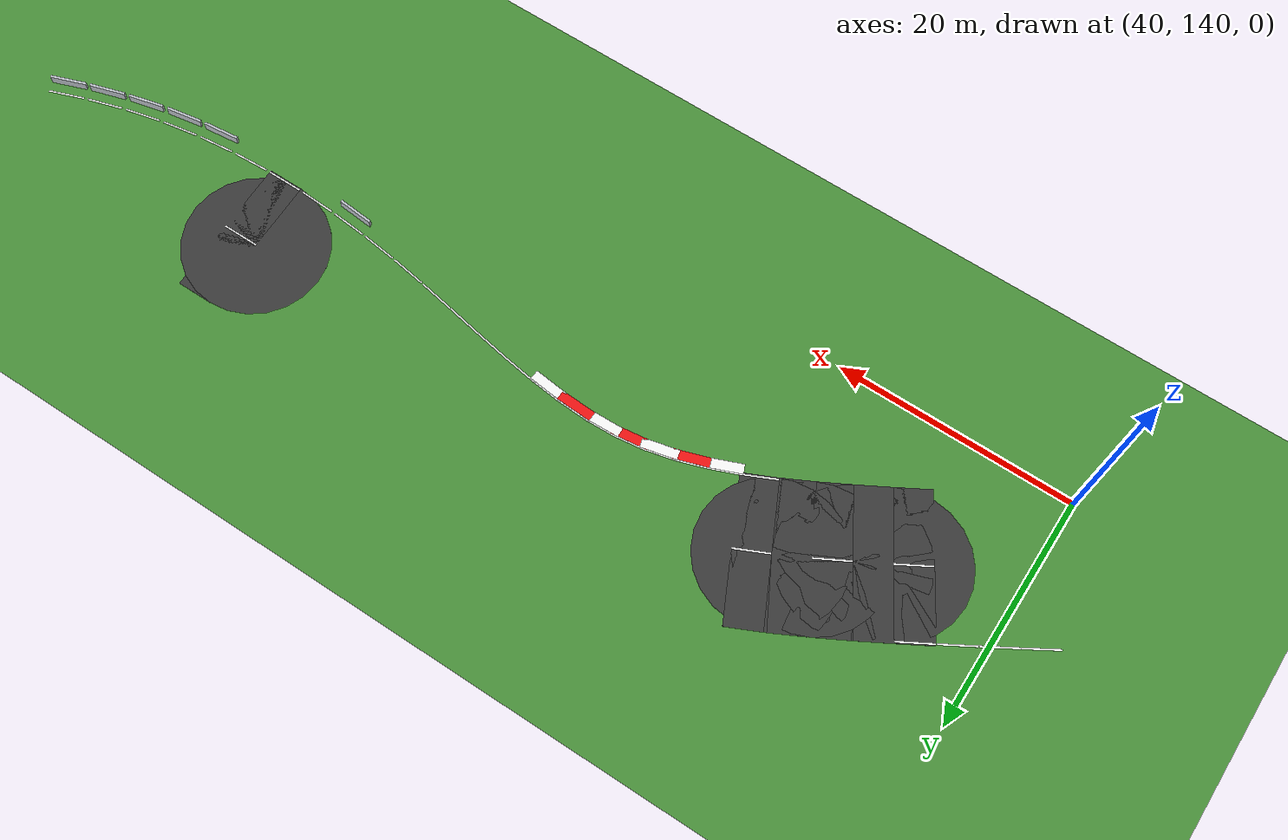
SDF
<sdf version="1.6">
 <world name="sem_silesia_ring_2026">
  <model name="ground_plane">
   <static>true</static>
   <link name="link">
    <collision name="collision">
     <geometry><plane><normal>0 0 1</normal><size>1200 1200</size></plane></geometry>
     <surface><friction><ode><mu>0.6</mu><mu2>0.6</mu2></ode></friction></surface>
    </collision>
    <visual name="visual">
     <geometry><plane><normal>0 0 1</normal><size>1200 1200</size></plane></geometry>
     <material><ambient>0.28 0.55 0.22 1</ambient><diffuse>0.28 0.55 0.22 1</diffuse></material>
    </visual>
   </link>
  </model>
  <model name="wl_L_s276">
   <static>true</static>
   <pose>124.9067 154.0681 0.0070 0 0 -2.7906</pose>
   <link name="link">
    <visual name="v">
     <geometry><box><size>3.0022 0.1500 0.0080</size></box></geometry>
     <material><ambient>0.95 0.95 0.95 1</ambient><diffuse>0.95 0.95 0.95 1</diffuse></material>
    </visual>
   </link>
  </model>
  <model name="arm_outL_276">
   <static>true</static>
   <pose>125.2333 153.1761 0.4000 0 0 -2.7906</pose>
   <link name="link">
    <visual name="v">
     <geometry><box><size>3.0022 0.2000 0.8000</size></box></geometry>
     <material><ambient>0.75 0.77 0.80 1</ambient><diffuse>0.75 0.77 0.80 1</diffuse></material>
    </visual>
    <collision name="c">
     <geometry><box><size>3.0022 0.2000 0.8000</size></box></geometry>
     <surface><friction><ode><mu>0.8</mu><mu2>0.8</mu2></ode></friction></surface>
    </collision>
   </link>
  </model>
  <model name="wl_L_s277">
   <static>true</static>
   <pose>121.7633 153.0122 0.0070 0 0 -2.8444</pose>
   <link name="link">
    <visual name="v">
     <geometry><box><size>3.0021 0.1500 0.0080</size></box></geometry>
     <material><ambient>0.95 0.95 0.95 1</ambient><diffuse>0.95 0.95 0.95 1</diffuse></material>
    </visual>
   </link>
  </model>
  <model name="arm_outL_277">
   <static>true</static>
   <pose>122.0415 152.1038 0.4000 0 0 -2.8444</pose>
   <link name="link">
    <visual name="v">
     <geometry><box><size>3.0021 0.2000 0.8000</size></box></geometry>
     <material><ambient>0.75 0.77 0.80 1</ambient><diffuse>0.75 0.77 0.80 1</diffuse></material>
    </visual>
    <collision name="c">
     <geometry><box><size>3.0021 0.2000 0.8000</size></box></geometry>
     <surface><friction><ode><mu>0.8</mu><mu2>0.8</mu2></ode></friction></surface>
    </collision>
   </link>
  </model>
  <model name="wl_L_s278">
   <static>true</static>
   <pose>118.5200 152.1275 0.0070 0 0 -2.9062</pose>
   <link name="link">
    <visual name="v">
     <geometry><box><size>3.0020 0.1500 0.0080</size></box></geometry>
     <material><ambient>0.95 0.95 0.95 1</ambient><diffuse>0.95 0.95 0.95 1</diffuse></material>
    </visual>
   </link>
  </model>
  <model name="arm_outL_278">
   <static>true</static>
   <pose>118.7415 151.2037 0.4000 0 0 -2.9062</pose>
   <link name="link">
    <visual name="v">
     <geometry><box><size>3.0020 0.2000 0.8000</size></box></geometry>
     <material><ambient>0.75 0.77 0.80 1</ambient><diffuse>0.75 0.77 0.80 1</diffuse></material>
    </visual>
    <collision name="c">
     <geometry><box><size>3.0020 0.2000 0.8000</size></box></geometry>
     <surface><friction><ode><mu>0.8</mu><mu2>0.8</mu2></ode></friction></surface>
    </collision>
   </link>
  </model>
  <model name="wl_L_s279">
   <static>true</static>
   <pose>115.2081 151.4463 0.0070 0 0 -2.9713</pose>
   <link name="link">
    <visual name="v">
     <geometry><box><size>3.0020 0.1500 0.0080</size></box></geometry>
     <material><ambient>0.95 0.95 0.95 1</ambient><diffuse>0.95 0.95 0.95 1</diffuse></material>
    </visual>
   </link>
  </model>
  <model name="arm_outL_279">
   <static>true</static>
   <pose>115.3691 150.5101 0.4000 0 0 -2.9713</pose>
   <link name="link">
    <visual name="v">
     <geometry><box><size>3.0020 0.2000 0.8000</size></box></geometry>
     <material><ambient>0.75 0.77 0.80 1</ambient><diffuse>0.75 0.77 0.80 1</diffuse></material>
    </visual>
    <collision name="c">
     <geometry><box><size>3.0020 0.2000 0.8000</size></box></geometry>
     <surface><friction><ode><mu>0.8</mu><mu2>0.8</mu2></ode></friction></surface>
    </collision>
   </link>
  </model>
  <model name="wl_L_s280">
   <static>true</static>
   <pose>111.8812 150.9788 0.0070 0 0 -3.0327</pose>
   <link name="link">
    <visual name="v">
     <geometry><box><size>3.0021 0.1500 0.0080</size></box></geometry>
     <material><ambient>0.95 0.95 0.95 1</ambient><diffuse>0.95 0.95 0.95 1</diffuse></material>
    </visual>
   </link>
  </model>
  <model name="arm_outL_280">
   <static>true</static>
   <pose>111.9845 150.0344 0.4000 0 0 -3.0327</pose>
   <link name="link">
    <visual name="v">
     <geometry><box><size>3.0021 0.2000 0.8000</size></box></geometry>
     <material><ambient>0.75 0.77 0.80 1</ambient><diffuse>0.75 0.77 0.80 1</diffuse></material>
    </visual>
    <collision name="c">
     <geometry><box><size>3.0021 0.2000 0.8000</size></box></geometry>
     <surface><friction><ode><mu>0.8</mu><mu2>0.8</mu2></ode></friction></surface>
    </collision>
   </link>
  </model>
  <model name="wl_L_s281">
   <static>true</static>
   <pose>108.5597 150.7104 0.0070 0 0 -3.0893</pose>
   <link name="link">
    <visual name="v">
     <geometry><box><size>3.0022 0.1500 0.0080</size></box></geometry>
     <material><ambient>0.95 0.95 0.95 1</ambient><diffuse>0.95 0.95 0.95 1</diffuse></material>
    </visual>
   </link>
  </model>
  <model name="road_s282">
   <static>true</static>
   <pose>105.2538 156.4731 0.0030 0 0 -3.1410</pose>
   <link name="link">
    <visual name="v">
     <geometry><box><size>3.0022 12.0000 0.0060</size></box></geometry>
     <material><ambient>0.22 0.22 0.22 1</ambient><diffuse>0.22 0.22 0.22 1</diffuse></material>
    </visual>
    <collision name="c">
     <geometry><box><size>3.0022 12.0000 0.0060</size></box></geometry>
     <surface><friction><ode><mu>0.9</mu><mu2>0.9</mu2></ode></friction></surface>
    </collision>
   </link>
  </model>
  <model name="wl_L_s282">
   <static>true</static>
   <pose>105.2571 150.6231 0.0070 0 0 -3.1410</pose>
   <link name="link">
    <visual name="v">
     <geometry><box><size>3.0022 0.1500 0.0080</size></box></geometry>
     <material><ambient>0.95 0.95 0.95 1</ambient><diffuse>0.95 0.95 0.95 1</diffuse></material>
    </visual>
   </link>
  </model>
  <model name="cd_s282">
   <static>true</static>
   <pose>105.2538 156.4731 0.0070 0 0 -3.1410</pose>
   <link name="link">
    <visual name="v">
     <geometry><box><size>3.0022 0.1500 0.0080</size></box></geometry>
     <material><ambient>0.95 0.95 0.95 1</ambient><diffuse>0.95 0.95 0.95 1</diffuse></material>
    </visual>
   </link>
  </model>
  <model name="road_jnt283">
   <static>true</static>
   <pose>103.7527 156.4723 0.0030 0 0 0</pose>
   <link name="link">
    <visual name="v">
     <geometry><cylinder><radius>6.0000</radius><length>0.0060</length></cylinder></geometry>
     <material><ambient>0.22 0.22 0.22 1</ambient><diffuse>0.22 0.22 0.22 1</diffuse></material>
    </visual>
    <collision name="c">
     <geometry><cylinder><radius>6.0000</radius><length>0.0060</length></cylinder></geometry>
     <surface><friction><ode><mu>0.9</mu><mu2>0.9</mu2></ode></friction></surface>
    </collision>
   </link>
  </model>
  <model name="wl_L_s283">
   <static>true</static>
   <pose>101.9828 150.6979 0.0070 0 0 3.0954</pose>
   <link name="link">
    <visual name="v">
     <geometry><box><size>3.0023 0.1500 0.0080</size></box></geometry>
     <material><ambient>0.95 0.95 0.95 1</ambient><diffuse>0.95 0.95 0.95 1</diffuse></material>
    </visual>
   </link>
  </model>
  <model name="wl_L_s284">
   <static>true</static>
   <pose>98.7428 150.9161 0.0070 0 0 3.0534</pose>
   <link name="link">
    <visual name="v">
     <geometry><box><size>3.0023 0.1500 0.0080</size></box></geometry>
     <material><ambient>0.95 0.95 0.95 1</ambient><diffuse>0.95 0.95 0.95 1</diffuse></material>
    </visual>
   </link>
  </model>
  <model name="arm_outL_284">
   <static>true</static>
   <pose>98.6591 149.9698 0.4000 0 0 3.0534</pose>
   <link name="link">
    <visual name="v">
     <geometry><box><size>3.0023 0.2000 0.8000</size></box></geometry>
     <material><ambient>0.75 0.77 0.80 1</ambient><diffuse>0.75 0.77 0.80 1</diffuse></material>
    </visual>
    <collision name="c">
     <geometry><box><size>3.0023 0.2000 0.8000</size></box></geometry>
     <surface><friction><ode><mu>0.8</mu><mu2>0.8</mu2></ode></friction></surface>
    </collision>
   </link>
  </model>
  <model name="wl_L_s285">
   <static>true</static>
   <pose>95.5404 151.2599 0.0070 0 0 3.0159</pose>
   <link name="link">
    <visual name="v">
     <geometry><box><size>3.0024 0.1500 0.0080</size></box></geometry>
     <material><ambient>0.95 0.95 0.95 1</ambient><diffuse>0.95 0.95 0.95 1</diffuse></material>
    </visual>
   </link>
  </model>
  <model name="wl_L_s286">
   <static>true</static>
   <pose>92.3806 151.7113 0.0070 0 0 2.9835</pose>
   <link name="link">
    <visual name="v">
     <geometry><box><size>3.0024 0.1500 0.0080</size></box></geometry>
     <material><ambient>0.95 0.95 0.95 1</ambient><diffuse>0.95 0.95 0.95 1</diffuse></material>
    </visual>
   </link>
  </model>
  <model name="wl_L_s287">
   <static>true</static>
   <pose>89.2997 152.2358 0.0070 0 0 2.9625</pose>
   <link name="link">
    <visual name="v">
     <geometry><box><size>3.0025 0.1500 0.0080</size></box></geometry>
     <material><ambient>0.95 0.95 0.95 1</ambient><diffuse>0.95 0.95 0.95 1</diffuse></material>
    </visual>
   </link>
  </model>
  <model name="wl_L_s288">
   <static>true</static>
   <pose>86.3126 152.7858 0.0070 0 0 2.9565</pose>
   <link name="link">
    <visual name="v">
     <geometry><box><size>3.0025 0.1500 0.0080</size></box></geometry>
     <material><ambient>0.95 0.95 0.95 1</ambient><diffuse>0.95 0.95 0.95 1</diffuse></material>
    </visual>
   </link>
  </model>
  <model name="wl_L_s289">
   <static>true</static>
   <pose>83.4116 153.3152 0.0070 0 0 2.9657</pose>
   <link name="link">
    <visual name="v">
     <geometry><box><size>3.0025 0.1500 0.0080</size></box></geometry>
     <material><ambient>0.95 0.95 0.95 1</ambient><diffuse>0.95 0.95 0.95 1</diffuse></material>
    </visual>
   </link>
  </model>
  <model name="wl_L_s290">
   <static>true</static>
   <pose>80.5930 153.7802 0.0070 0 0 2.9905</pose>
   <link name="link">
    <visual name="v">
     <geometry><box><size>3.0024 0.1500 0.0080</size></box></geometry>
     <material><ambient>0.95 0.95 0.95 1</ambient><diffuse>0.95 0.95 0.95 1</diffuse></material>
    </visual>
   </link>
  </model>
  <model name="wl_L_s291">
   <static>true</static>
   <pose>77.8589 154.1382 0.0070 0 0 3.0323</pose>
   <link name="link">
    <visual name="v">
     <geometry><box><size>3.0022 0.1500 0.0080</size></box></geometry>
     <material><ambient>0.95 0.95 0.95 1</ambient><diffuse>0.95 0.95 0.95 1</diffuse></material>
    </visual>
   </link>
  </model>
  <model name="kerb_L_291">
   <static>true</static>
   <pose>77.8098 153.6908 0.0120 0 0 3.0323</pose>
   <link name="link">
    <visual name="v">
     <geometry><box><size>3.0022 0.8000 0.0160</size></box></geometry>
     <material><ambient>0.95 0.95 0.95 1</ambient><diffuse>0.95 0.95 0.95 1</diffuse></material>
    </visual>
   </link>
  </model>
  <model name="wl_L_s292">
   <static>true</static>
   <pose>75.2183 154.3478 0.0070 0 0 3.0924</pose>
   <link name="link">
    <visual name="v">
     <geometry><box><size>3.0019 0.1500 0.0080</size></box></geometry>
     <material><ambient>0.95 0.95 0.95 1</ambient><diffuse>0.95 0.95 0.95 1</diffuse></material>
    </visual>
   </link>
  </model>
  <model name="kerb_L_292">
   <static>true</static>
   <pose>75.1961 153.8984 0.0120 0 0 3.0924</pose>
   <link name="link">
    <visual name="v">
     <geometry><box><size>3.0019 0.8000 0.0160</size></box></geometry>
     <material><ambient>0.92 0.08 0.08 1</ambient><diffuse>0.92 0.08 0.08 1</diffuse></material>
    </visual>
   </link>
  </model>
  <model name="wl_L_s293">
   <static>true</static>
   <pose>72.6860 154.3712 0.0070 0 0 -3.1109</pose>
   <link name="link">
    <visual name="v">
     <geometry><box><size>3.0015 0.1500 0.0080</size></box></geometry>
     <material><ambient>0.95 0.95 0.95 1</ambient><diffuse>0.95 0.95 0.95 1</diffuse></material>
    </visual>
   </link>
  </model>
  <model name="kerb_L_293">
   <static>true</static>
   <pose>72.6998 153.9214 0.0120 0 0 -3.1109</pose>
   <link name="link">
    <visual name="v">
     <geometry><box><size>3.0015 0.8000 0.0160</size></box></geometry>
     <material><ambient>0.95 0.95 0.95 1</ambient><diffuse>0.95 0.95 0.95 1</diffuse></material>
    </visual>
   </link>
  </model>
  <model name="wl_L_s294">
   <static>true</static>
   <pose>70.2763 154.1774 0.0070 0 0 -3.0117</pose>
   <link name="link">
    <visual name="v">
     <geometry><box><size>3.0011 0.1500 0.0080</size></box></geometry>
     <material><ambient>0.95 0.95 0.95 1</ambient><diffuse>0.95 0.95 0.95 1</diffuse></material>
    </visual>
   </link>
  </model>
  <model name="kerb_L_294">
   <static>true</static>
   <pose>70.3346 153.7312 0.0120 0 0 -3.0117</pose>
   <link name="link">
    <visual name="v">
     <geometry><box><size>3.0011 0.8000 0.0160</size></box></geometry>
     <material><ambient>0.92 0.08 0.08 1</ambient><diffuse>0.92 0.08 0.08 1</diffuse></material>
    </visual>
   </link>
  </model>
  <model name="wl_L_s295">
   <static>true</static>
   <pose>67.9184 153.7454 0.0070 0 0 -2.9091</pose>
   <link name="link">
    <visual name="v">
     <geometry><box><size>3.0014 0.1500 0.0080</size></box></geometry>
     <material><ambient>0.95 0.95 0.95 1</ambient><diffuse>0.95 0.95 0.95 1</diffuse></material>
    </visual>
   </link>
  </model>
  <model name="kerb_L_295">
   <static>true</static>
   <pose>68.0221 153.3075 0.0120 0 0 -2.9091</pose>
   <link name="link">
    <visual name="v">
     <geometry><box><size>3.0014 0.8000 0.0160</size></box></geometry>
     <material><ambient>0.95 0.95 0.95 1</ambient><diffuse>0.95 0.95 0.95 1</diffuse></material>
    </visual>
   </link>
  </model>
  <model name="wl_L_s296">
   <static>true</static>
   <pose>65.5157 153.0663 0.0070 0 0 -2.8232</pose>
   <link name="link">
    <visual name="v">
     <geometry><box><size>3.0018 0.1500 0.0080</size></box></geometry>
     <material><ambient>0.95 0.95 0.95 1</ambient><diffuse>0.95 0.95 0.95 1</diffuse></material>
    </visual>
   </link>
  </model>
  <model name="kerb_L_296">
   <static>true</static>
   <pose>65.6566 152.6389 0.0120 0 0 -2.8232</pose>
   <link name="link">
    <visual name="v">
     <geometry><box><size>3.0018 0.8000 0.0160</size></box></geometry>
     <material><ambient>0.92 0.08 0.08 1</ambient><diffuse>0.92 0.08 0.08 1</diffuse></material>
    </visual>
   </link>
  </model>
  <model name="wl_L_s297">
   <static>true</static>
   <pose>63.0750 152.1683 0.0070 0 0 -2.7549</pose>
   <link name="link">
    <visual name="v">
     <geometry><box><size>3.0021 0.1500 0.0080</size></box></geometry>
     <material><ambient>0.95 0.95 0.95 1</ambient><diffuse>0.95 0.95 0.95 1</diffuse></material>
    </visual>
   </link>
  </model>
  <model name="kerb_L_297">
   <static>true</static>
   <pose>63.2447 151.7516 0.0120 0 0 -2.7549</pose>
   <link name="link">
    <visual name="v">
     <geometry><box><size>3.0021 0.8000 0.0160</size></box></geometry>
     <material><ambient>0.95 0.95 0.95 1</ambient><diffuse>0.95 0.95 0.95 1</diffuse></material>
    </visual>
   </link>
  </model>
  <model name="road_s298">
   <static>true</static>
   <pose>58.1199 156.3822 0.0030 0 0 -2.7025</pose>
   <link name="link">
    <visual name="v">
     <geometry><box><size>3.0023 12.0000 0.0060</size></box></geometry>
     <material><ambient>0.22 0.22 0.22 1</ambient><diffuse>0.22 0.22 0.22 1</diffuse></material>
    </visual>
    <collision name="c">
     <geometry><box><size>3.0023 12.0000 0.0060</size></box></geometry>
     <surface><friction><ode><mu>0.9</mu><mu2>0.9</mu2></ode></friction></surface>
    </collision>
   </link>
  </model>
  <model name="wl_L_s298">
   <static>true</static>
   <pose>60.6066 151.0871 0.0070 0 0 -2.7025</pose>
   <link name="link">
    <visual name="v">
     <geometry><box><size>3.0023 0.1500 0.0080</size></box></geometry>
     <material><ambient>0.95 0.95 0.95 1</ambient><diffuse>0.95 0.95 0.95 1</diffuse></material>
    </visual>
   </link>
  </model>
  <model name="cd_s298">
   <static>true</static>
   <pose>58.1199 156.3822 0.0070 0 0 -2.7025</pose>
   <link name="link">
    <visual name="v">
     <geometry><box><size>3.0023 0.1500 0.0080</size></box></geometry>
     <material><ambient>0.95 0.95 0.95 1</ambient><diffuse>0.95 0.95 0.95 1</diffuse></material>
    </visual>
   </link>
  </model>
  <model name="road_s299">
   <static>true</static>
   <pose>55.4276 155.0546 0.0030 0 0 -2.6644</pose>
   <link name="link">
    <visual name="v">
     <geometry><box><size>3.0024 12.0000 0.0060</size></box></geometry>
     <material><ambient>0.22 0.22 0.22 1</ambient><diffuse>0.22 0.22 0.22 1</diffuse></material>
    </visual>
    <collision name="c">
     <geometry><box><size>3.0024 12.0000 0.0060</size></box></geometry>
     <surface><friction><ode><mu>0.9</mu><mu2>0.9</mu2></ode></friction></surface>
    </collision>
   </link>
  </model>
  <model name="road_jnt299">
   <static>true</static>
   <pose>56.7611 155.7441 0.0030 0 0 0</pose>
   <link name="link">
    <visual name="v">
     <geometry><cylinder><radius>6.0000</radius><length>0.0060</length></cylinder></geometry>
     <material><ambient>0.22 0.22 0.22 1</ambient><diffuse>0.22 0.22 0.22 1</diffuse></material>
    </visual>
    <collision name="c">
     <geometry><cylinder><radius>6.0000</radius><length>0.0060</length></cylinder></geometry>
     <surface><friction><ode><mu>0.9</mu><mu2>0.9</mu2></ode></friction></surface>
    </collision>
   </link>
  </model>
  <model name="road_s300">
   <static>true</static>
   <pose>52.7784 153.6423 0.0030 0 0 -2.6392</pose>
   <link name="link">
    <visual name="v">
     <geometry><box><size>3.0025 12.0000 0.0060</size></box></geometry>
     <material><ambient>0.22 0.22 0.22 1</ambient><diffuse>0.22 0.22 0.22 1</diffuse></material>
    </visual>
    <collision name="c">
     <geometry><box><size>3.0025 12.0000 0.0060</size></box></geometry>
     <surface><friction><ode><mu>0.9</mu><mu2>0.9</mu2></ode></friction></surface>
    </collision>
   </link>
  </model>
  <model name="road_jnt300">
   <static>true</static>
   <pose>54.0941 154.3652 0.0030 0 0 0</pose>
   <link name="link">
    <visual name="v">
     <geometry><cylinder><radius>6.0000</radius><length>0.0060</length></cylinder></geometry>
     <material><ambient>0.22 0.22 0.22 1</ambient><diffuse>0.22 0.22 0.22 1</diffuse></material>
    </visual>
    <collision name="c">
     <geometry><cylinder><radius>6.0000</radius><length>0.0060</length></cylinder></geometry>
     <surface><friction><ode><mu>0.9</mu><mu2>0.9</mu2></ode></friction></surface>
    </collision>
   </link>
  </model>
  <model name="cd_s300">
   <static>true</static>
   <pose>52.7784 153.6423 0.0070 0 0 -2.6392</pose>
   <link name="link">
    <visual name="v">
     <geometry><box><size>3.0025 0.1500 0.0080</size></box></geometry>
     <material><ambient>0.95 0.95 0.95 1</ambient><diffuse>0.95 0.95 0.95 1</diffuse></material>
    </visual>
   </link>
  </model>
  <model name="road_s301">
   <static>true</static>
   <pose>50.1569 152.1785 0.0030 0 0 -2.6255</pose>
   <link name="link">
    <visual name="v">
     <geometry><box><size>3.0025 12.0000 0.0060</size></box></geometry>
     <material><ambient>0.22 0.22 0.22 1</ambient><diffuse>0.22 0.22 0.22 1</diffuse></material>
    </visual>
    <collision name="c">
     <geometry><box><size>3.0025 12.0000 0.0060</size></box></geometry>
     <surface><friction><ode><mu>0.9</mu><mu2>0.9</mu2></ode></friction></surface>
    </collision>
   </link>
  </model>
  <model name="road_jnt301">
   <static>true</static>
   <pose>51.4626 152.9193 0.0030 0 0 0</pose>
   <link name="link">
    <visual name="v">
     <geometry><cylinder><radius>6.0000</radius><length>0.0060</length></cylinder></geometry>
     <material><ambient>0.22 0.22 0.22 1</ambient><diffuse>0.22 0.22 0.22 1</diffuse></material>
    </visual>
    <collision name="c">
     <geometry><cylinder><radius>6.0000</radius><length>0.0060</length></cylinder></geometry>
     <surface><friction><ode><mu>0.9</mu><mu2>0.9</mu2></ode></friction></surface>
    </collision>
   </link>
  </model>
  <model name="road_s302">
   <static>true</static>
   <pose>47.5520 150.6854 0.0030 0 0 -2.6168</pose>
   <link name="link">
    <visual name="v">
     <geometry><box><size>3.0025 12.0000 0.0060</size></box></geometry>
     <material><ambient>0.22 0.22 0.22 1</ambient><diffuse>0.22 0.22 0.22 1</diffuse></material>
    </visual>
    <collision name="c">
     <geometry><box><size>3.0025 12.0000 0.0060</size></box></geometry>
     <surface><friction><ode><mu>0.9</mu><mu2>0.9</mu2></ode></friction></surface>
    </collision>
   </link>
  </model>
  <model name="road_jnt302">
   <static>true</static>
   <pose>48.8512 151.4376 0.0030 0 0 0</pose>
   <link name="link">
    <visual name="v">
     <geometry><cylinder><radius>6.0000</radius><length>0.0060</length></cylinder></geometry>
     <material><ambient>0.22 0.22 0.22 1</ambient><diffuse>0.22 0.22 0.22 1</diffuse></material>
    </visual>
    <collision name="c">
     <geometry><cylinder><radius>6.0000</radius><length>0.0060</length></cylinder></geometry>
     <surface><friction><ode><mu>0.9</mu><mu2>0.9</mu2></ode></friction></surface>
    </collision>
   </link>
  </model>
  <model name="wl_R_s302">
   <static>true</static>
   <pose>44.6209 155.7482 0.0070 0 0 -2.6168</pose>
   <link name="link">
    <visual name="v">
     <geometry><box><size>3.0025 0.1500 0.0080</size></box></geometry>
     <material><ambient>0.95 0.95 0.95 1</ambient><diffuse>0.95 0.95 0.95 1</diffuse></material>
    </visual>
   </link>
  </model>
  <model name="cd_s302">
   <static>true</static>
   <pose>47.5520 150.6854 0.0070 0 0 -2.6168</pose>
   <link name="link">
    <visual name="v">
     <geometry><box><size>3.0025 0.1500 0.0080</size></box></geometry>
     <material><ambient>0.95 0.95 0.95 1</ambient><diffuse>0.95 0.95 0.95 1</diffuse></material>
    </visual>
   </link>
  </model>
  <model name="wl_R_s303">
   <static>true</static>
   <pose>41.9895 154.2112 0.0070 0 0 -2.6091</pose>
   <link name="link">
    <visual name="v">
     <geometry><box><size>3.0025 0.1500 0.0080</size></box></geometry>
     <material><ambient>0.95 0.95 0.95 1</ambient><diffuse>0.95 0.95 0.95 1</diffuse></material>
    </visual>
   </link>
  </model>
  <model name="wl_R_s304">
   <static>true</static>
   <pose>39.3741 152.6584 0.0070 0 0 -2.6024</pose>
   <link name="link">
    <visual name="v">
     <geometry><box><size>3.0025 0.1500 0.0080</size></box></geometry>
     <material><ambient>0.95 0.95 0.95 1</ambient><diffuse>0.95 0.95 0.95 1</diffuse></material>
    </visual>
   </link>
  </model>
  <model name="wl_R_s305">
   <static>true</static>
   <pose>36.7736 151.0926 0.0070 0 0 -2.5968</pose>
   <link name="link">
    <visual name="v">
     <geometry><box><size>3.0025 0.1500 0.0080</size></box></geometry>
     <material><ambient>0.95 0.95 0.95 1</ambient><diffuse>0.95 0.95 0.95 1</diffuse></material>
    </visual>
   </link>
  </model>
 </world>
</sdf>
